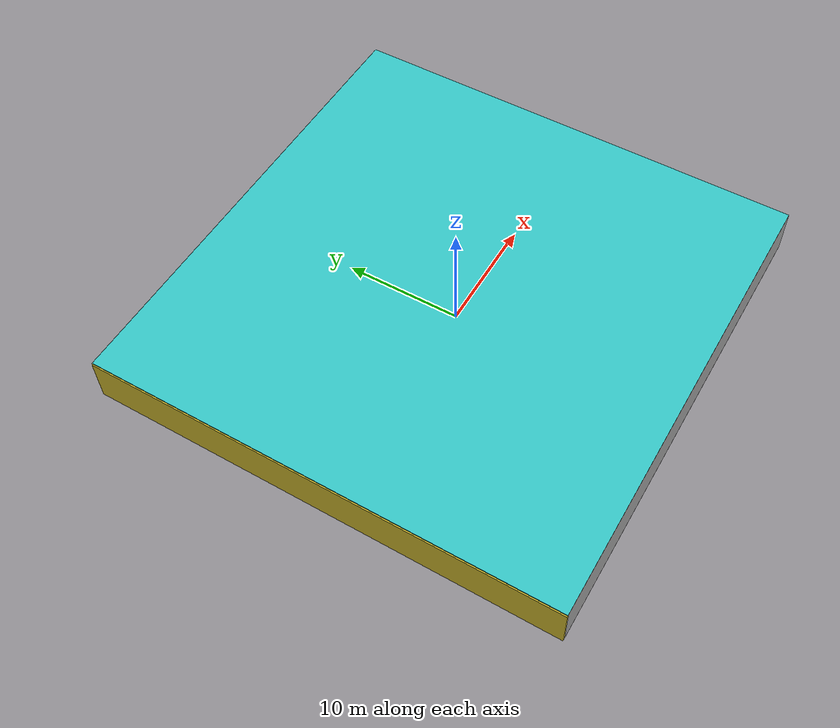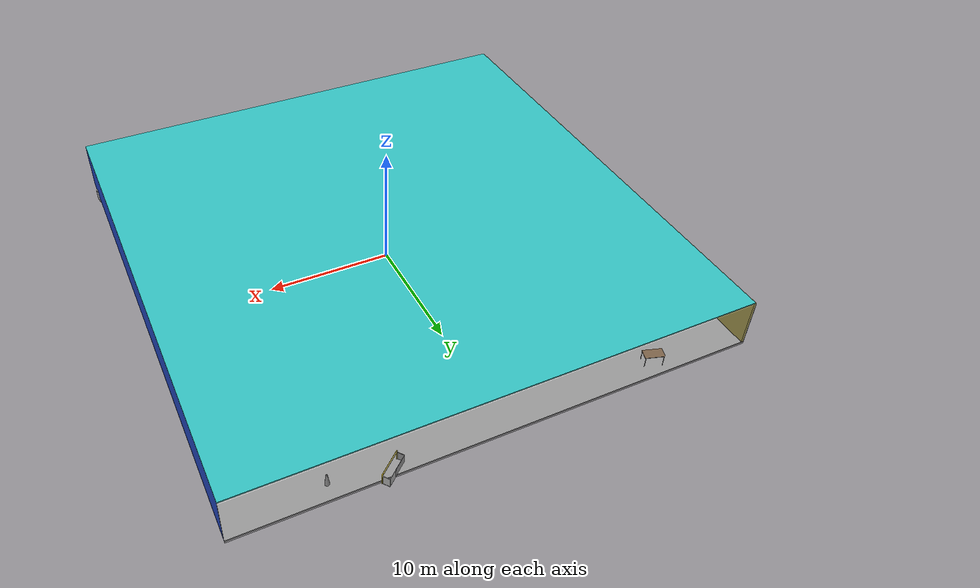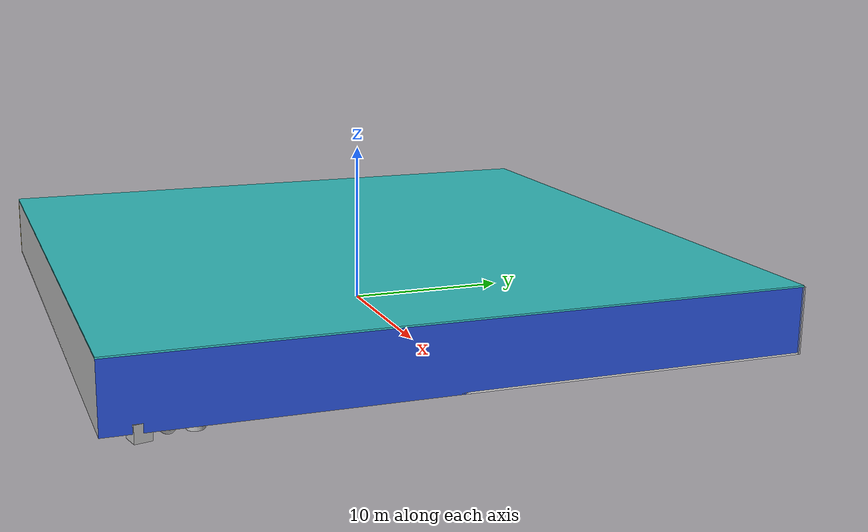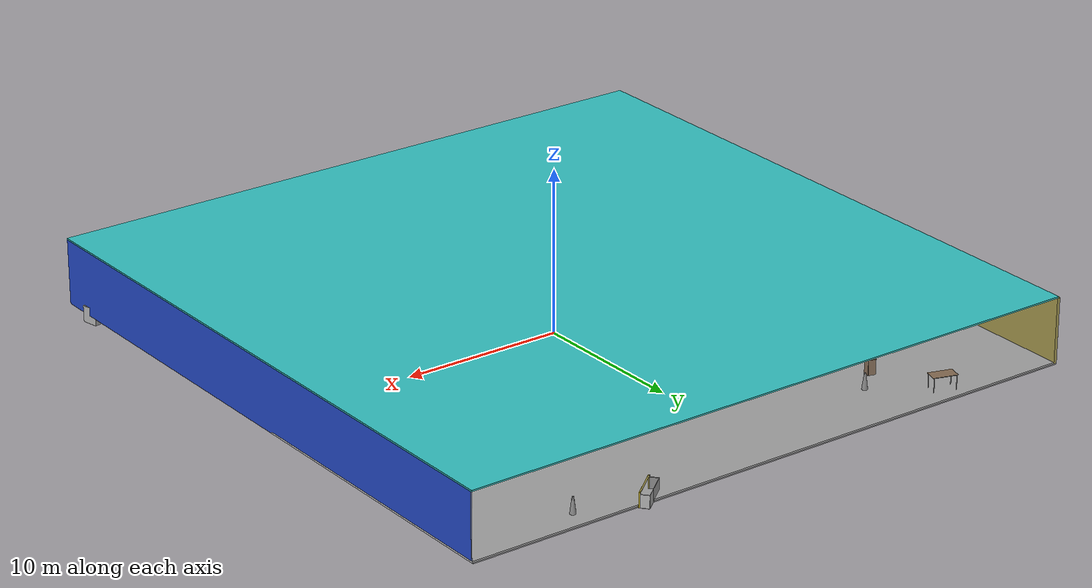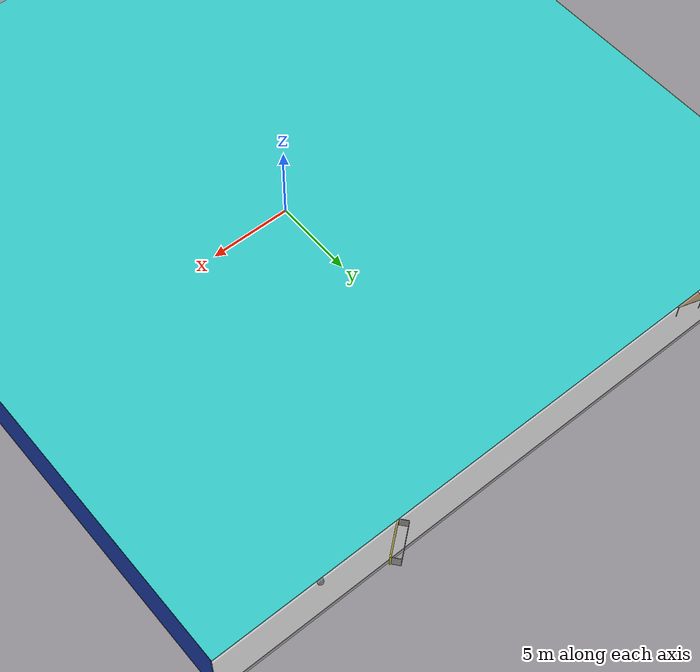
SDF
<sdf version="1.4">
 <world name="default">
  <physics type="ode">
   <max_step_size>0.001</max_step_size>
   <real_time_factor>1</real_time_factor>
   <real_time_update_rate>1000</real_time_update_rate>
   <gravity>0 0 -9.8</gravity>
  </physics>
  <scene><ambient>0.4 0.4 0.4 1</ambient><background>0.7 0.7 0.7 1</background><shadows>1</shadows></scene>
  <model name="Surrounding">
   <static>1</static>
   <link name="Ceiling">
    <collision name="Ceiling_Collision"><geometry><box><size>40 40 0.1</size></box></geometry></collision>
    <visual name="Ceiling_Visual">
     <geometry><box><size>40 40 0.1</size></box></geometry>
     <material>
      <script><uri>file://media/materials/scripts/gazebo.material</uri><name>Gazebo/Turquoise</name></script>
     </material>
    </visual>
    <pose>0 0 4.05 0 0 0</pose>
   </link>
   <link name="Wall_South">
    <collision name="Wall_South_Collision">
     <geometry><box><size>40 0 4</size></box></geometry>
     <pose>0 0 2 0 -0 0</pose>
    </collision>
    <visual name="Wall_South_Visual">
     <pose>0 0 2 0 -0 0</pose>
     <geometry><box><size>40 0 4</size></box></geometry>
     <material>
      <script><uri>file://media/materials/scripts/gazebo.material</uri><name>Gazebo/JointAnchor</name></script>
     </material>
    </visual>
    <velocity_decay><linear>0</linear><angular>0</angular></velocity_decay>
    <pose>0 -20 0 0 -0 0</pose>
   </link>
   <link name="Wall_East">
    <collision name="Wall_21_Collision">
     <geometry><box><size>40 0 4</size></box></geometry>
     <pose>0 0 2 0 -0 0</pose>
    </collision>
    <visual name="Wall_21_Visual">
     <pose>0 0 2 0 -0 0</pose>
     <geometry><box><size>40 0 4</size></box></geometry>
     <material>
      <script><uri>file://media/materials/scripts/gazebo.material</uri><name>Gazebo/BlueLaser</name></script>
     </material>
    </visual>
    <velocity_decay><linear>0</linear><angular>0</angular></velocity_decay>
    <pose>20 0 0 0 -0 1.5708</pose>
   </link>
   <link name="Wall_North">
    <collision name="Wall_22_Collision">
     <geometry><box><size>40 0.2 4</size></box></geometry>
     <pose>0 0 2 0 -0 0</pose>
    </collision>
    <visual name="Wall_22_Visual">
     <pose>0 0 2 0 -0 0</pose>
     <geometry><box><size>40 0.2 4</size></box></geometry>
     <material>
      <script><uri>file://media/materials/scripts/gazebo.material</uri><name>Gazebo/GreyTransparent</name></script>
     </material>
    </visual>
    <velocity_decay><linear>0</linear><angular>0</angular></velocity_decay>
    <pose>0 20 0 0 -0 0</pose>
   </link>
   <link name="Wall_West">
    <collision name="Wall_23_Collision">
     <geometry><box><size>40 0.2 4</size></box></geometry>
     <pose>0 0 2 0 -0 0</pose>
    </collision>
    <visual name="Wall_23_Visual">
     <pose>0 0 2 0 -0 0</pose>
     <geometry><box><size>40 0.2 4</size></box></geometry>
     <material>
      <script><uri>file://media/materials/scripts/gazebo.material</uri><name>Gazebo/ZincYellow</name></script>
     </material>
    </visual>
    <velocity_decay><linear>0</linear><angular>0</angular></velocity_decay>
    <pose>-20 0 0 0 0 -1.5708</pose>
   </link>
   <link name="Ground_link">
    <collision name="collision">
     <pose>0 0 .05 0 -0 0</pose>
     <geometry><box><size>40 40 0.1</size></box></geometry>
    </collision>
    <visual name="visual">
     <pose>0 0 .05 0 -0 0</pose>
     <geometry><box><size>40 40 0.1</size></box></geometry>
     <material>
      <script><uri>file://media/materials/scripts/gazebo.material</uri><name>Gazebo/White</name></script>
     </material>
    </visual>
   </link>
   <static>1</static>
  </model>
  <spherical_coordinates>
   <surface_model>EARTH_WGS84</surface_model>
   <latitude_deg>0</latitude_deg>
   <longitude_deg>0</longitude_deg>
   <elevation>0</elevation>
   <heading_deg>0</heading_deg>
  </spherical_coordinates>
  <light name="lightball_0" type="diffuse">
   <diffuse>0.8 0.8 0.8 1</diffuse>
   <specular>0.2 0.2 0.2 1</specular>
   <attenuation>
    <range>100</range>
    <constant>0.7</constant>
    <linear>0.01</linear>
    <quadratic>0.001</quadratic>
   </attenuation>
   <direction>-0.5 0.1 -0.9</direction>
   <pose>-3.04843010153 -16.0934252089 1.6131155972 0 0 0</pose>
  </light>
  <light name="lightball_1" type="diffuse">
   <diffuse>0.8 0.8 0.8 1</diffuse>
   <specular>0.2 0.2 0.2 1</specular>
   <attenuation>
    <range>100</range>
    <constant>0.7</constant>
    <linear>0.01</linear>
    <quadratic>0.001</quadratic>
   </attenuation>
   <direction>-0.5 0.1 -0.9</direction>
   <pose>-13.2862470446 -19.6472760359 2.6968657167 0 0 0</pose>
  </light>
  <light name="lightball_2" type="diffuse">
   <diffuse>0.8 0.8 0.8 1</diffuse>
   <specular>0.2 0.2 0.2 1</specular>
   <attenuation>
    <range>100</range>
    <constant>0.7</constant>
    <linear>0.01</linear>
    <quadratic>0.001</quadratic>
   </attenuation>
   <direction>-0.5 0.1 -0.9</direction>
   <pose>-9.00861630234 -19.8762910386 3.76569657596 0 0 0</pose>
  </light>
  <light name="lightball_3" type="diffuse">
   <diffuse>0.8 0.8 0.8 1</diffuse>
   <specular>0.2 0.2 0.2 1</specular>
   <attenuation>
    <range>100</range>
    <constant>0.7</constant>
    <linear>0.01</linear>
    <quadratic>0.001</quadratic>
   </attenuation>
   <direction>-0.5 0.1 -0.9</direction>
   <pose>17.566474363 17.4209145235 1.36703349192 0 0 0</pose>
  </light>
  <light name="lightball_4" type="diffuse">
   <diffuse>0.8 0.8 0.8 1</diffuse>
   <specular>0.2 0.2 0.2 1</specular>
   <attenuation>
    <range>100</range>
    <constant>0.7</constant>
    <linear>0.01</linear>
    <quadratic>0.001</quadratic>
   </attenuation>
   <direction>-0.5 0.1 -0.9</direction>
   <pose>13.940504278 9.65897407243 1.64619421926 0 0 0</pose>
  </light>
  <light name="lightball_5" type="diffuse">
   <diffuse>0.8 0.8 0.8 1</diffuse>
   <specular>0.2 0.2 0.2 1</specular>
   <attenuation>
    <range>100</range>
    <constant>0.7</constant>
    <linear>0.01</linear>
    <quadratic>0.001</quadratic>
   </attenuation>
   <direction>-0.5 0.1 -0.9</direction>
   <pose>-10.2016210617 -1.71632743849 0.663519296855 0 0 0</pose>
  </light>
  <light name="lightball_6" type="diffuse">
   <diffuse>0.8 0.8 0.8 1</diffuse>
   <specular>0.2 0.2 0.2 1</specular>
   <attenuation>
    <range>100</range>
    <constant>0.7</constant>
    <linear>0.01</linear>
    <quadratic>0.001</quadratic>
   </attenuation>
   <direction>-0.5 0.1 -0.9</direction>
   <pose>15.5418025088 -2.39957046085 1.41130220178 0 0 0</pose>
  </light>
  <light name="lightball_7" type="diffuse">
   <diffuse>0.8 0.8 0.8 1</diffuse>
   <specular>0.2 0.2 0.2 1</specular>
   <attenuation>
    <range>100</range>
    <constant>0.7</constant>
    <linear>0.01</linear>
    <quadratic>0.001</quadratic>
   </attenuation>
   <direction>-0.5 0.1 -0.9</direction>
   <pose>11.982227885 16.2261604129 2.50804319138 0 0 0</pose>
  </light>
  <light name="lightball_8" type="diffuse">
   <diffuse>0.8 0.8 0.8 1</diffuse>
   <specular>0.2 0.2 0.2 1</specular>
   <attenuation>
    <range>100</range>
    <constant>0.7</constant>
    <linear>0.01</linear>
    <quadratic>0.001</quadratic>
   </attenuation>
   <direction>-0.5 0.1 -0.9</direction>
   <pose>-2.09592228542 2.26331475532 2.57827905696 0 0 0</pose>
  </light>
  <light name="lightball_9" type="diffuse">
   <diffuse>0.8 0.8 0.8 1</diffuse>
   <specular>0.2 0.2 0.2 1</specular>
   <attenuation>
    <range>100</range>
    <constant>0.7</constant>
    <linear>0.01</linear>
    <quadratic>0.001</quadratic>
   </attenuation>
   <direction>-0.5 0.1 -0.9</direction>
   <pose>-14.6118709186 9.78249695469 0.516570789675 0 0 0</pose>
  </light>
  <light name="lightball_10" type="diffuse">
   <diffuse>0.8 0.8 0.8 1</diffuse>
   <specular>0.2 0.2 0.2 1</specular>
   <attenuation>
    <range>100</range>
    <constant>0.7</constant>
    <linear>0.01</linear>
    <quadratic>0.001</quadratic>
   </attenuation>
   <direction>-0.5 0.1 -0.9</direction>
   <pose>1.66114404087 -15.8308063603 2.82134014266 0 0 0</pose>
  </light>
  <light name="lightball_11" type="diffuse">
   <diffuse>0.8 0.8 0.8 1</diffuse>
   <specular>0.2 0.2 0.2 1</specular>
   <attenuation>
    <range>100</range>
    <constant>0.7</constant>
    <linear>0.01</linear>
    <quadratic>0.001</quadratic>
   </attenuation>
   <direction>-0.5 0.1 -0.9</direction>
   <pose>11.8947835477 1.96890004111 1.3209016923 0 0 0</pose>
  </light>
  <include>
   <uri>model://construction_cone</uri>
   <pose>-18.0072933324 0.86280668264 0 0 0 0.854704103824</pose>
  </include>
  <include><uri>model://table</uri><pose>-14.6712073014 9.20338367873 0 0 0 0.404205419756</pose></include>
  <include>
   <uri>model://textured_shapes</uri>
   <pose>-13.73885243 11.9016244355 0 0 0 1.31799479208</pose>
  </include>
  <include>
   <uri>model://textured_shapes</uri>
   <pose>-12.0219175195 0.33949823964 0 0 0 0.184284904135</pose>
  </include>
  <include><uri>model://cabinet</uri><pose>-10.6863998584 14.9831788129 0 0 0 1.33672899068</pose></include>
  <include><uri>model://table</uri><pose>-12.5787790037 18.8628951484 0 0 0 2.83885154334</pose></include>
  <include><uri>model://cabinet</uri><pose>-9.29829136583 -11.943571497 0 0 0 0.474345130895</pose></include>
  <include>
   <uri>model://textured_shapes</uri>
   <pose>-8.01599376871 4.35053268981 0 0 0 0.151981647142</pose>
  </include>
  <include>
   <uri>model://robocup_3Dsim_goal</uri>
   <pose>-9.25097404665 11.8700886341 0 0 0 0.659909513497</pose>
  </include>
  <include>
   <uri>model://construction_cone</uri>
   <pose>-9.11807924493 16.3517373148 0 0 0 1.07920907524</pose>
  </include>
  <include><uri>model://cabinet</uri><pose>-4.71325433205 -5.73703489216 0 0 0 0.246603618619</pose></include>
  <include><uri>model://cabinet</uri><pose>2.52193846761 3.4768763356 0 0 0 1.6334836047</pose></include>
  <include>
   <uri>model://robocup_3Dsim_goal</uri>
   <pose>4.43229494265 8.95977656555 0 0 0 2.60606021828</pose>
  </include>
  <include><uri>model://cabinet</uri><pose>7.5814496528 -0.361034759099 0 0 0 0.55378509923</pose></include>
  <include>
   <uri>model://robocup_3Dsim_goal</uri>
   <pose>8.69400337589 19.5128480319 0 0 0 2.24839782145</pose>
  </include>
  <include>
   <uri>model://construction_cone</uri>
   <pose>12.7792598764 18.7976379119 0 0 0 2.04623629988</pose>
  </include>
  <include><uri>model://cabinet</uri><pose>15.2913724618 -9.13592895791 0 0 0 0.109276322973</pose></include>
  <include><uri>model://cabinet</uri><pose>15.5206545696 -2.01644238113 0 0 0 0.877085830531</pose></include>
  <include>
   <uri>model://textured_shapes</uri>
   <pose>19.1841260746 -16.483838024 0 0 0 0.224239420875</pose>
  </include>
  <include><uri>model://cabinet</uri><pose>18.5970098954 -15.0893604022 0 0 0 2.44770673172</pose></include>
  <include>
   <uri>model://construction_cone</uri>
   <pose>18.0456160856 -9.29380432832 0 0 0 0.68868017867</pose>
  </include>
  <include><uri>model://table</uri><pose>18.4954189326 -6.48229897671 0 0 0 2.48986171397</pose></include>
 </world>
</sdf>

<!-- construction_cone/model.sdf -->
<sdf version="1.5">
  <model name="Construction Cone">
    <link name="link">
      <collision name="collision">
        <geometry>
          <mesh>
            <scale>10 10 10</scale>
            <uri>file://isr-testbed/construction_cone/meshes/construction_cone.dae</uri>
          </mesh>
        </geometry>
      </collision>
      <visual name="visual">
        <geometry>
          <mesh>
            <scale>10 10 10</scale>
            <uri>file://isr-testbed/construction_cone/meshes/construction_cone.dae</uri>
          </mesh>
        </geometry>
      </visual>
    </link>
  </model>
</sdf>

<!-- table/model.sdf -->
<sdf version="1.5">
  <model name="table">
    <static>true</static>
    <link name="link">
      <collision name="surface">
        <pose>0 0 1.0 0 0 0</pose>
        <geometry>
          <box>
            <size>1.5 0.8 0.03</size>
          </box>
        </geometry>
        <surface>
          <friction>
            <ode>
              <mu>0.6</mu>
              <mu2>0.6</mu2>
            </ode>
          </friction>
        </surface>
      </collision>
      <visual name="visual1">
        <pose>0 0 1.0 0 0 0</pose>
        <geometry>
          <box>
            <size>1.5 0.8 0.03</size>
          </box>
        </geometry>
        <material>
          <script>
            <uri>model://media/materials/scripts/gazebo.material</uri>
            <name>Gazebo/Wood</name>
          </script>
        </material>
      </visual>
      <collision name="front_left_leg">
        <pose>0.68 0.38 0.5 0 0 0</pose>
        <geometry>
          <cylinder>
            <radius>0.02</radius>
            <length>1.0</length>
          </cylinder>
        </geometry>
      </collision>
      <visual name="front_left_leg">
        <pose>0.68 0.38 0.5 0 0 0</pose>
        <geometry>
          <cylinder>
            <radius>0.02</radius>
            <length>1.0</length>
          </cylinder>
        </geometry>
        <material>
          <script>
            <uri>model://media/materials/scripts/gazebo.material</uri>
            <name>Gazebo/Grey</name>
          </script>
        </material>
      </visual>
      <collision name="front_right_leg">
        <pose>0.68 -0.38 0.5 0 0 0</pose>
        <geometry>
          <cylinder>
            <radius>0.02</radius>
            <length>1.0</length>
          </cylinder>
        </geometry>
      </collision>
      <visual name="front_right_leg">
        <pose>0.68 -0.38 0.5 0 0 0</pose>
        <geometry>
          <cylinder>
            <radius>0.02</radius>
            <length>1.0</length>
          </cylinder>
        </geometry>
        <material>
          <script>
            <uri>model://media/materials/scripts/gazebo.material</uri>
            <name>Gazebo/Grey</name>
          </script>
        </material>
      </visual>
      <collision name="back_right_leg">
        <pose>-0.68 -0.38 0.5 0 0 0</pose>
        <geometry>
          <cylinder>
            <radius>0.02</radius>
            <length>1.0</length>
          </cylinder>
        </geometry>
      </collision>
      <visual name="back_right_leg">
        <pose>-0.68 -0.38 0.5 0 0 0</pose>
        <geometry>
          <cylinder>
            <radius>0.02</radius>
            <length>1.0</length>
          </cylinder>
        </geometry>
        <material>
          <script>
            <uri>model://media/materials/scripts/gazebo.material</uri>
            <name>Gazebo/Grey</name>
          </script>
        </material>
      </visual>
      <collision name="back_left_leg">
        <pose>-0.68 0.38 0.5 0 0 0</pose>
        <geometry>
          <cylinder>
            <radius>0.02</radius>
            <length>1.0</length>
          </cylinder>
        </geometry>
      </collision>
      <visual name="back_left_leg">
        <pose>-0.68 0.38 0.5 0 0 0</pose>
        <geometry>
          <cylinder>
            <radius>0.02</radius>
            <length>1.0</length>
          </cylinder>
        </geometry>
        <material>
          <script>
            <uri>model://media/materials/scripts/gazebo.material</uri>
            <name>Gazebo/Grey</name>
          </script>
        </material>
      </visual>
    </link>
  </model>
</sdf>

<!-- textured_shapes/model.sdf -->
<sdf version="1.6">
  <model name="textured_shapes">
    <pose>0 0 0.5 0 0 0</pose>
    <link name="box">
      <pose>0 -1.5 0 0 0 0</pose>
      <collision name="collision">
        <geometry>
          <box>
            <size>1 1 1</size>
          </box>
        </geometry>
      </collision>
      <visual name="visual">
        <geometry>
          <box>
            <size>1 1 1</size>
          </box>
        </geometry>
        <material>
          <script>
            <uri>model://../model_source/models/textured_shapes/materials/scripts</uri>
            <uri>model://../model_source/models/textured_shapes/materials/textures</uri>
            <name>TexturedShape/Squares</name>
          </script>
        </material>
      </visual>
    </link>
    <link name="sphere">
      <collision name="collision">
        <geometry>
          <sphere>
            <radius>0.5</radius>
          </sphere>
        </geometry>
      </collision>
      <visual name="visual">
        <geometry>
          <sphere>
            <radius>0.5</radius>
          </sphere>
        </geometry>
        <material>
          <script>
            <uri>model://../model_source/models/textured_shapes/materials/scripts</uri>
            <uri>model://../model_source/models/textured_shapes/materials/textures</uri>
            <name>TexturedShape/Squares</name>
          </script>
        </material>
      </visual>
    </link>
    <link name="cylinder">
      <pose>0 1.5 0 0 0 0</pose>
      <collision name="collision">
        <geometry>
          <cylinder>
            <radius>0.5</radius>
            <length>1</length>
          </cylinder>
        </geometry>
      </collision>
      <visual name="visual">
        <geometry>
          <cylinder>
            <radius>0.5</radius>
            <length>1</length>
          </cylinder>
        </geometry>
        <material>
          <script>
            <uri>model://../model_source/models/textured_shapes/materials/scripts</uri>
            <uri>model://../model_source/models/textured_shapes/materials/textures</uri>
            <name>TexturedShape/Squares</name>
          </script>
        </material>
      </visual>
    </link>
  </model>
</sdf>

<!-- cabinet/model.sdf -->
<sdf version="1.5">
  <model name="cabinet">
    <static>true</static>
    <link name="cabinet_bottom_plate">
      <inertial>
        <pose>0 0 -1 0 0 0</pose>
        <inertia>
          <ixx>2.050000</ixx>
          <ixy>0</ixy>
          <ixz>0</ixz>
          <iyy>2.050000</iyy>
          <iyz>0</iyz>
          <izz>2.050000</izz>
        </inertia>
        <mass>25.000000</mass>
      </inertial>
      <collision name="cabinet_bottom_plate_geom">
        <pose>0 0 0.010000 0 0 0</pose>
        <geometry>
          <box>
            <size>0.450000 0.450000 0.020000</size>
          </box>
        </geometry>
      </collision>
      <visual name="cabinet_bottom_plate_geom_visual">
        <pose>0 0 0.010000 0 0 0</pose>
        <geometry>
          <box>
            <size>0.450000 0.450000 0.020000</size>
          </box>
        </geometry>
        <material>
          <script>
            <uri>model://media/materials/scripts/gazebo.material</uri>
            <name>Gazebo/Wood</name>
          </script>
        </material>
      </visual>
      <collision name="cabinet_bottom_plate_geom_cabinet_back_plate">
        <pose>0.235000 0 0.510000 0 0 0</pose>
        <geometry>
          <box>
            <size>0.020000 0.450000 1.020000</size>
          </box>
        </geometry>
      </collision>
      <visual name="cabinet_bottom_plate_geom_cabinet_back_plate_visual">
        <pose>0.235000 0 0.510000 0 0 0</pose>
        <geometry>
          <box>
            <size>0.020000 0.450000 1.020000</size>
          </box>
        </geometry>
        <material>
          <script>
            <uri>model://media/materials/scripts/gazebo.material</uri>
            <name>Gazebo/Wood</name>
          </script>
        </material>
      </visual>
      <collision name="cabinet_bottom_plate_geom_cabinet_left_plate">
        <pose>0 0.235000 0.510000 0 0 0</pose>
        <geometry>
          <box>
            <size>0.450000 0.020000 1.020000</size>
          </box>
        </geometry>
      </collision>
      <visual name="cabinet_bottom_plate_geom_cabinet_left_plate_visual">
        <pose>0 0.235000 0.510000 0 0 0</pose>
        <geometry>
          <box>
            <size>0.450000 0.020000 1.020000</size>
          </box>
        </geometry>
        <material>
          <script>
            <uri>model://media/materials/scripts/gazebo.material</uri>
            <name>Gazebo/Wood</name>
          </script>
        </material>
      </visual>
      <collision name="cabinet_bottom_plate_geom_cabinet_middle_plate">
        <pose>0 0 0.510000 0 0 0</pose>
        <geometry>
          <box>
            <size>0.450000 0.450000 0.020000</size>
          </box>
        </geometry>
      </collision>
      <visual name="cabinet_bottom_plate_geom_cabinet_middle_plate_visual">
        <pose>0 0 0.510000 0 0 0</pose>
        <geometry>
          <box>
            <size>0.450000 0.450000 0.020000</size>
          </box>
        </geometry>
        <material>
          <script>
            <uri>model://media/materials/scripts/gazebo.material</uri>
            <name>Gazebo/Wood</name>
          </script>
        </material>
      </visual>
      <collision name="cabinet_bottom_plate_geom_cabinet_right_plate">
        <pose>0 -0.235000 0.510000 0 0 0</pose>
        <geometry>
          <box>
            <size>0.450000 0.020000 1.020000</size>
          </box>
        </geometry>
      </collision>
      <visual name="cabinet_bottom_plate_geom_cabinet_right_plate_visual">
        <pose>0 -0.235000 0.510000 0 0 0</pose>
        <geometry>
          <box>
            <size>0.450000 0.020000 1.020000</size>
          </box>
        </geometry>
        <material>
          <script>
            <uri>model://media/materials/scripts/gazebo.material</uri>
            <name>Gazebo/Wood</name>
          </script>
        </material>
      </visual>
      <collision name="cabinet_bottom_plate_geom_cabinet_top_plate">
        <pose>0 0 1.010000 0 0 0</pose>
        <geometry>
          <box>
            <size>0.450000 0.450000 0.020000</size>
          </box>
        </geometry>
      </collision>
      <visual name="cabinet_bottom_plate_geom_cabinet_top_plate_visual">
        <pose>0 0 1.010000 0 0 0</pose>
        <geometry>
          <box>
            <size>0.450000 0.450000 0.020000</size>
          </box>
        </geometry>
        <material>
          <script>
            <uri>model://media/materials/scripts/gazebo.material</uri>
            <name>Gazebo/Wood</name>
          </script>
        </material>
      </visual>
    </link>
  </model>
</sdf>

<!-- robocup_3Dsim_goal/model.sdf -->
<sdf version="1.5">
  <model name="robocup_3d_goal">
    <static>true</static>
    <link name="left_post">
      <pose>0 1.05 0.45 0 0 0</pose>
      <collision name="collision">
        <geometry>
          <cylinder>
            <radius>0.05</radius>
            <length>0.9</length>
          </cylinder>
        </geometry>
      </collision>
      <visual name="visual">
        <geometry>
          <cylinder>
            <radius>0.05</radius>
            <length>0.9</length>
          </cylinder>
        </geometry>
        <material>
          <script>
            <uri>file://media/materials/scripts/gazebo.material</uri>
            <name>Gazebo/ZincYellow</name>
          </script>
        </material>
      </visual>
    </link>
    <link name="left_support_horiz_lower">
      <pose>0.30 1.05 0.01 0 0 0</pose>
      <collision name="collision">
        <geometry>
          <box>
            <size>0.50 0.02 0.02</size>
          </box>
        </geometry>
      </collision>
      <visual name="visual">
        <geometry>
          <box>
            <size>0.50 0.02 0.02</size>
          </box>
        </geometry>
        <material>
          <script>
            <uri>file://media/materials/scripts/gazebo.material</uri>
            <name>Gazebo/White</name>
          </script>
        </material>
      </visual>
    </link>
    <link name="left_support_horiz_upper">
      <pose>0.30 1.05 0.79 0 0 0</pose>
      <collision name="collision">
        <geometry>
          <box>
            <size>0.50 0.02 0.02</size>
          </box>
        </geometry>
      </collision>
      <visual name="visual">
        <geometry>
          <box>
            <size>0.50 0.02 0.02</size>
          </box>
        </geometry>
        <material>
          <script>
            <uri>file://media/materials/scripts/gazebo.material</uri>
            <name>Gazebo/White</name>
          </script>
        </material>
      </visual>
    </link>
    <link name="left_support_vertical">
      <pose>0.56 1.05 0.4 0 1.5708 0</pose>
      <collision name="collision">
        <geometry>
          <box>
            <size>0.80 0.02 0.02</size>
          </box>
        </geometry>
      </collision>
      <visual name="visual">
        <geometry>
          <box>
            <size>0.80 0.02 0.02</size>
          </box>
        </geometry>
        <material>
          <script>
            <uri>file://media/materials/scripts/gazebo.material</uri>
            <name>Gazebo/White</name>
          </script>
        </material>
      </visual>
    </link>
    <link name="right_support_horiz_lower">
      <pose>0.30 -1.05 0.01 0 0 0</pose>
      <collision name="collision">
        <geometry>
          <box>
            <size>0.50 0.02 0.02</size>
          </box>
        </geometry>
      </collision>
      <visual name="visual">
        <geometry>
          <box>
            <size>0.50 0.02 0.02</size>
          </box>
        </geometry>
        <material>
          <script>
            <uri>file://media/materials/scripts/gazebo.material</uri>
            <name>Gazebo/White</name>
          </script>
        </material>
      </visual>
    </link>
    <link name="right_support_horiz_upper">
      <pose>0.30 -1.05 0.79 0 0 0</pose>
      <collision name="collision">
        <geometry>
          <box>
            <size>0.50 0.02 0.02</size>
          </box>
        </geometry>
      </collision>
      <visual name="visual">
        <geometry>
          <box>
            <size>0.50 0.02 0.02</size>
          </box>
        </geometry>
        <material>
          <script>
            <uri>file://media/materials/scripts/gazebo.material</uri>
            <name>Gazebo/White</name>
          </script>
        </material>
      </visual>
    </link>
    <link name="right_support_vertical">
      <pose>0.56 -1.05 0.4 0 1.5708 0</pose>
      <collision name="collision">
        <geometry>
          <box>
            <size>0.80 0.02 0.02</size>
          </box>
        </geometry>
      </collision>
      <visual name="visual">
        <geometry>
          <box>
            <size>0.80 0.02 0.02</size>
          </box>
        </geometry>
        <material>
          <script>
            <uri>file://media/materials/scripts/gazebo.material</uri>
            <name>Gazebo/White</name>
          </script>
        </material>
      </visual>
    </link>
    <link name="center_support_horiz_lower">
      <pose>0.56 0 0.01 0 1.5708 0</pose>
      <collision name="collision">
        <geometry>
          <box>
            <size>0.02 2.08 0.02</size>
          </box>
        </geometry>
      </collision>
      <visual name="visual">
        <geometry>
          <box>
            <size>0.02 2.08 0.02</size>
          </box>
        </geometry>
        <material>
          <script>
            <uri>file://media/materials/scripts/gazebo.material</uri>
            <name>Gazebo/White</name>
          </script>
        </material>
      </visual>
    </link>
    <link name="center_support_horiz_upper">
      <pose>0.56 0 0.79 0 1.5708 0</pose>
      <collision name="collision">
        <geometry>
          <box>
            <size>0.02 2.08 0.02</size>
          </box>
        </geometry>
      </collision>
      <visual name="visual">
        <geometry>
          <box>
            <size>0.02 2.08 0.02</size>
          </box>
        </geometry>
        <material>
          <script>
            <uri>file://media/materials/scripts/gazebo.material</uri>
            <name>Gazebo/White</name>
          </script>
        </material>
      </visual>
    </link>
    <link name="right_post">
      <pose>0 -1.05 0.45 0 0 0</pose>
      <collision name="collision">
        <geometry>
          <cylinder>
            <radius>0.05</radius>
            <length>0.9</length>
          </cylinder>
        </geometry>
      </collision>
      <visual name="visual">
        <geometry>
          <cylinder>
            <radius>0.05</radius>
            <length>0.9</length>
          </cylinder>
        </geometry>
        <material>
          <script>
            <uri>file://media/materials/scripts/gazebo.material</uri>
            <name>Gazebo/ZincYellow</name>
          </script>
        </material>
      </visual>
    </link>
    <link name="crossbar">
      <pose>0 0 0.85 1.57 1.57 0</pose>
      <collision name="collision">
        <geometry>
          <cylinder>
            <radius>0.05</radius>
            <length>2.0</length>
          </cylinder>
        </geometry>
      </collision>
      <visual name="visual">
        <geometry>
          <cylinder>
            <radius>0.05</radius>
            <length>2.0</length>
          </cylinder>
        </geometry>
        <material>
          <script>
            <uri>file://media/materials/scripts/gazebo.material</uri>
            <name>Gazebo/ZincYellow</name>
          </script>
        </material>
      </visual>
    </link>
    <link name="center_net">
      <pose>0.56 0 0.40 0 0 0</pose>
      <collision name="collision">
        <geometry>
          <box>
            <size>0.01 2.1 0.80</size>
          </box>
        </geometry>
      </collision>
      <visual name="visual">
        <geometry>
          <box>
            <size>0.01 2.1 0.80</size>
          </box>
        </geometry>
        <material>
          <script>
            <uri>model://../model_source/models/robocup09_spl_field/materials/scripts/</uri>
            <uri>model://../model_source/models/robocup09_spl_field/materials/textures/</uri>
            <name>RoboCup/Net</name>
          </script>
        </material>
      </visual>
    </link>
    <link name="left_net">
      <pose>0.30 1.05 0.40 0 0 0</pose>
      <collision name="collision">
        <geometry>
          <box>
            <size>0.50 0.01 0.76</size>
          </box>
        </geometry>
      </collision>
      <visual name="visual">
        <geometry>
          <box>
            <size>0.50 0.01 0.76</size>
          </box>
        </geometry>
        <material>
          <script>
            <uri>model://../model_source/models/robocup09_spl_field/materials/scripts/</uri>
            <uri>model://../model_source/models/robocup09_spl_field/materials/textures/</uri>
            <name>RoboCup/Net</name>
          </script>
        </material>
      </visual>
    </link>
    <link name="right_net">
      <pose>0.30 -1.05 0.40 0 0 0</pose>
      <collision name="collision">
        <geometry>
          <box>
            <size>0.50 0.01 0.76</size>
          </box>
        </geometry>
      </collision>
      <visual name="visual">
        <geometry>
          <box>
            <size>0.50 0.01 0.76</size>
          </box>
        </geometry>
        <material>
          <script>
            <uri>model://../model_source/models/robocup09_spl_field/materials/scripts/</uri>
            <uri>model://../model_source/models/robocup09_spl_field/materials/textures/</uri>
            <name>RoboCup/Net</name>
          </script>
        </material>
      </visual>
    </link>
  </model>
</sdf>
